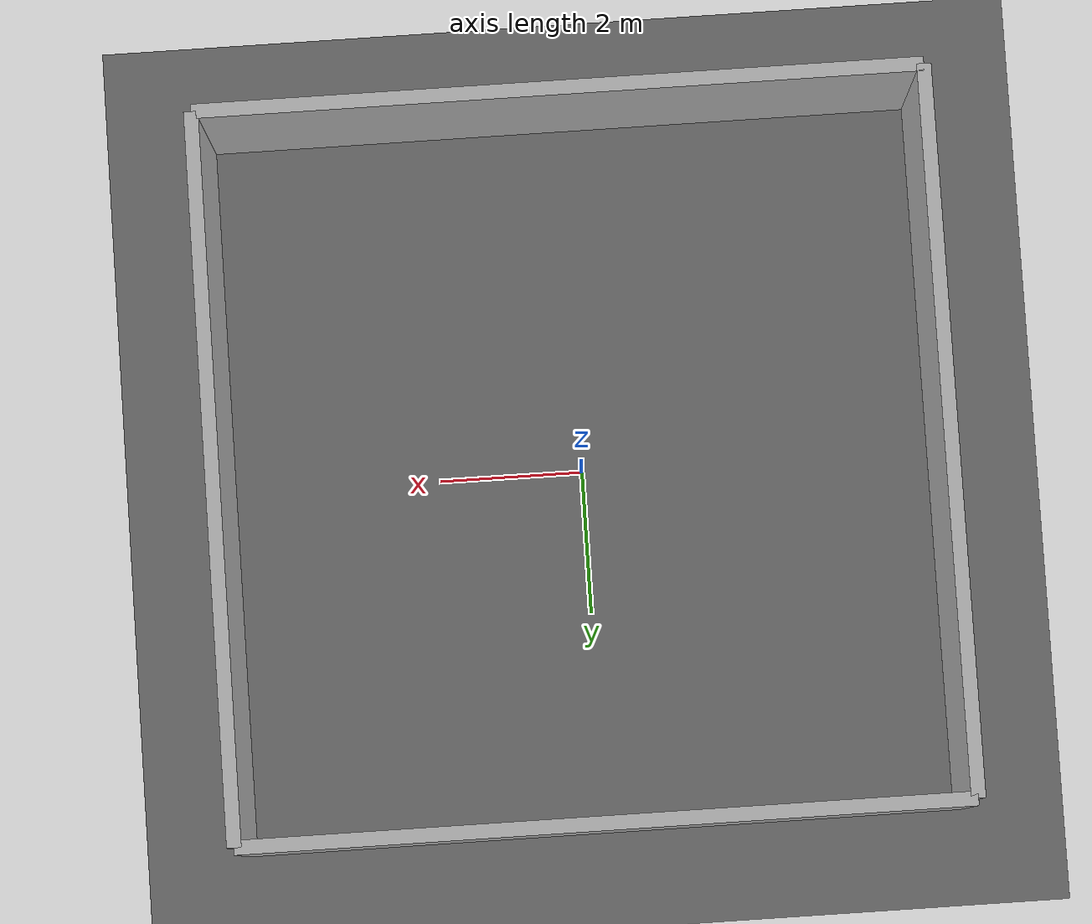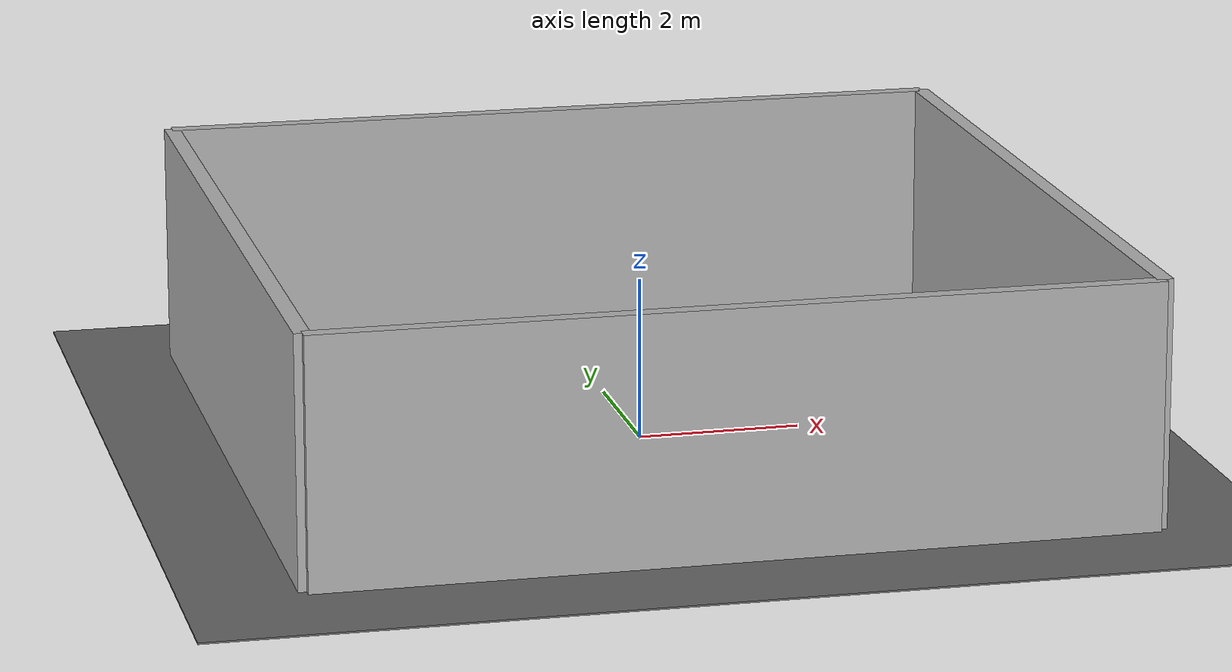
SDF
<sdf version="1.6">
 <world name="warehouse_world">
  <physics type="ode">
   <max_step_size>0.001</max_step_size>
   <real_time_update_rate>1000</real_time_update_rate>
  </physics>
  <scene><ambient>0.5 0.5 0.5 1</ambient><background>0.3 0.3 0.3 1</background><shadows>true</shadows></scene>
  <light name="sun" type="directional">
   <pose>0 0 20 0 0 0</pose>
   <diffuse>0.8 0.8 0.8 1</diffuse>
   <specular>0.2 0.2 0.2 1</specular>
   <attenuation>
    <range>1000</range>
    <constant>0.9</constant>
    <linear>0.01</linear>
    <quadratic>0.001</quadratic>
   </attenuation>
   <direction>-0.5 0.1 -0.9</direction>
  </light>
  <light name="warehouse_light_1" type="point">
   <pose>3 3 10 0 0 0</pose>
   <diffuse>0.7 0.7 0.6 1</diffuse>
   <specular>0.1 0.1 0.1 1</specular>
   <attenuation>
    <range>20</range>
    <constant>0.9</constant>
    <linear>0.05</linear>
    <quadratic>0.001</quadratic>
   </attenuation>
  </light>
  <light name="warehouse_light_2" type="point">
   <pose>-3 -3 10 0 0 0</pose>
   <diffuse>0.7 0.7 0.6 1</diffuse>
   <specular>0.1 0.1 0.1 1</specular>
   <attenuation>
    <range>20</range>
    <constant>0.9</constant>
    <linear>0.05</linear>
    <quadratic>0.001</quadratic>
   </attenuation>
  </light>
  <model name="concrete_floor">
   <static>true</static>
   <pose>0 0 -0.01 0 0 0</pose>
   <link name="link">
    <collision name="collision"><geometry><box><size>50 50 0.02</size></box></geometry></collision>
    <visual name="visual">
     <geometry><box><size>50 50 0.02</size></box></geometry>
     <material>
      <ambient>0.4 0.4 0.4 1</ambient>
      <diffuse>0.4 0.4 0.4 1</diffuse>
      <specular>0.05 0.05 0.05 1</specular>
     </material>
    </visual>
   </link>
  </model>
  <model name="back_wall">
   <static>true</static>
   <pose>-5 0 1.5 0 0 0</pose>
   <link name="link">
    <collision name="collision"><geometry><box><size>0.2 10 3</size></box></geometry></collision>
    <visual name="visual">
     <geometry><box><size>0.2 10 3</size></box></geometry>
     <material><ambient>0.7 0.7 0.7 1</ambient><diffuse>0.7 0.7 0.7 1</diffuse></material>
    </visual>
   </link>
  </model>
  <model name="front_wall">
   <static>true</static>
   <pose>5 0 1.5 0 0 0</pose>
   <link name="link">
    <collision name="collision"><geometry><box><size>0.2 10 3</size></box></geometry></collision>
    <visual name="visual">
     <geometry><box><size>0.2 10 3</size></box></geometry>
     <material><ambient>0.7 0.7 0.7 1</ambient><diffuse>0.7 0.7 0.7 1</diffuse></material>
    </visual>
   </link>
  </model>
  <model name="left_wall">
   <static>true</static>
   <pose>0 -5 1.5 0 0 0</pose>
   <link name="link">
    <collision name="collision"><geometry><box><size>10 0.2 3</size></box></geometry></collision>
    <visual name="visual">
     <geometry><box><size>10 0.2 3</size></box></geometry>
     <material><ambient>0.7 0.7 0.7 1</ambient><diffuse>0.7 0.7 0.7 1</diffuse></material>
    </visual>
   </link>
  </model>
  <model name="right_wall">
   <static>true</static>
   <pose>0 5 1.5 0 0 0</pose>
   <link name="link">
    <collision name="collision"><geometry><box><size>10 0.2 3</size></box></geometry></collision>
    <visual name="visual">
     <geometry><box><size>10 0.2 3</size></box></geometry>
     <material><ambient>0.7 0.7 0.7 1</ambient><diffuse>0.7 0.7 0.7 1</diffuse></material>
    </visual>
   </link>
  </model>
 </world>
</sdf>
